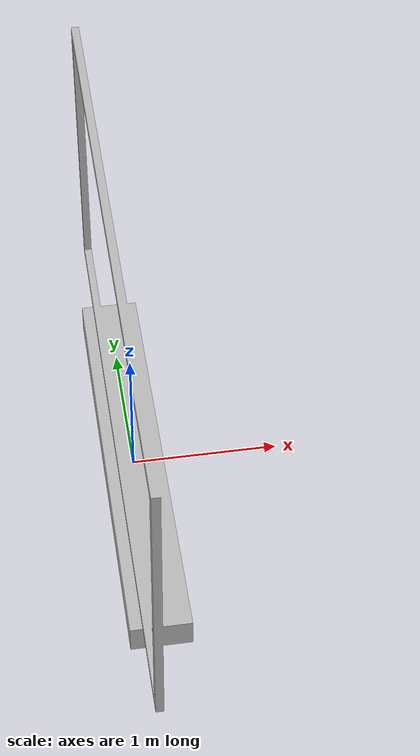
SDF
<?xml version="1.0" ?>
<sdf version="1.6">
  <model name="canvas">
    <static>true</static>
    <link name="link">
      <collision name="collision">
        <geometry>
          <mesh>
            <scale>0.2 0.2 0.2</scale>
            <uri>model://canvas/meshes/canvas.dae</uri>
          </mesh>
        </geometry>
      </collision>
      <visual name="visual">
        <geometry>
          <mesh>
            <scale>0.2 0.2 0.2</scale>
            <uri>model://canvas/meshes/canvas.dae</uri>
          </mesh>
        </geometry>
       <material>
         <script>
           <uri>model://stand/materials/scripts</uri>
           <uri>model://stand/materials/textures</uri>
           <name>black/Diffuse</name>
         </script>
       </material>
      </visual>
    </link>
  </model>
</sdf>
